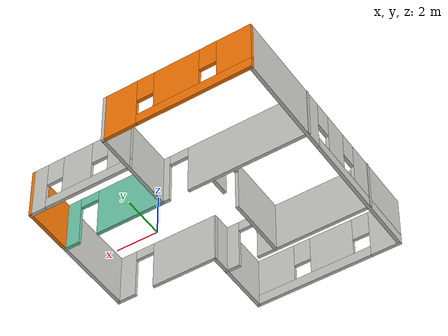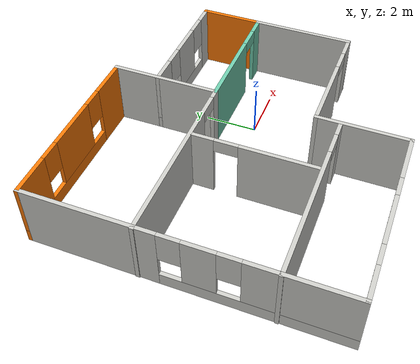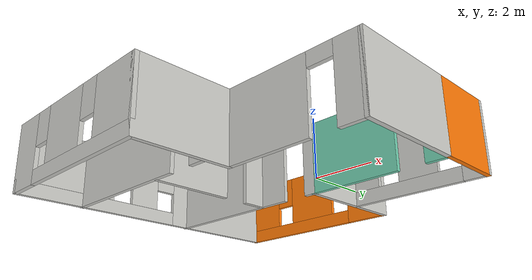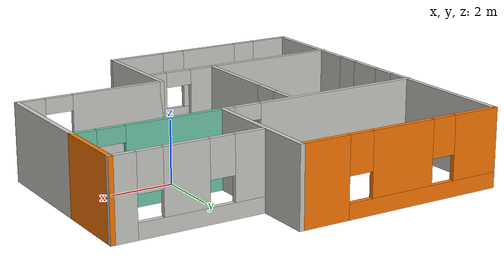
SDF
<?xml version='1.0'?>
<sdf version='1.6'>
  <model name='editor_models5'>
    <pose frame=''>-2.1153 -0.345 0 0 -0 0</pose>
    <link name='Wall_10'>
      <collision name='Wall_10_Collision'>
        <geometry>
          <box>
            <size>3.55 0.15 2.5</size>
          </box>
        </geometry>
        <pose frame=''>0 0 1.25 0 -0 0</pose>
      </collision>
      <visual name='Wall_10_Visual'>
        <pose frame=''>0 0 1.25 0 -0 0</pose>
        <geometry>
          <box>
            <size>3.55 0.15 2.5</size>
          </box>
        </geometry>
        <material>
          <script>
            <uri>file://media/materials/scripts/gazebo.material</uri>
            <name>Gazebo/CeilingTiled</name>
          </script>
          <ambient>0.996078 0.47451 0.0196078 1</ambient>
        </material>
      </visual>
      <pose frame=''>1.0153 -3.975 0 0 0 -1.5708</pose>
    </link>
    <link name='Wall_12'>
      <pose frame=''>-2.425 1.575 0 0 -0 3.14159</pose>
      <visual name='Wall_12_Visual_0'>
        <pose frame=''>-3.29324 0 1.25 0 -0 0</pose>
        <geometry>
          <box>
            <size>0.444103 0.15 2.5</size>
          </box>
        </geometry>
        <material>
          <script>
            <uri>file://media/materials/scripts/gazebo.material</uri>
            <name>Gazebo/CeilingTiled</name>
          </script>
          <ambient>0.435294 0.796078 0.67451 1</ambient>
        </material>
      </visual>
      <collision name='Wall_12_Collision_0'>
        <geometry>
          <box>
            <size>0.444103 0.15 2.5</size>
          </box>
        </geometry>
        <pose frame=''>-3.29324 0 1.25 0 -0 0</pose>
      </collision>
      <visual name='Wall_12_Visual_1'>
        <pose frame=''>0.672051 0 1.25 0 -0 0</pose>
        <geometry>
          <box>
            <size>5.68649 0.15 2.5</size>
          </box>
        </geometry>
        <material>
          <script>
            <uri>file://media/materials/scripts/gazebo.material</uri>
            <name>Gazebo/CeilingTiled</name>
          </script>
          <ambient>0.435294 0.796078 0.67451 1</ambient>
        </material>
      </visual>
      <collision name='Wall_12_Collision_1'>
        <geometry>
          <box>
            <size>5.68649 0.15 2.5</size>
          </box>
        </geometry>
        <pose frame=''>0.672051 0 1.25 0 -0 0</pose>
      </collision>
      <visual name='Wall_12_Visual_2'>
        <pose frame=''>-2.62119 0 2.25 0 -0 0</pose>
        <geometry>
          <box>
            <size>0.9 0.15 0.5</size>
          </box>
        </geometry>
        <material>
          <script>
            <uri>file://media/materials/scripts/gazebo.material</uri>
            <name>Gazebo/CeilingTiled</name>
          </script>
          <ambient>0.435294 0.796078 0.67451 1</ambient>
        </material>
      </visual>
      <collision name='Wall_12_Collision_2'>
        <geometry>
          <box>
            <size>0.9 0.15 0.5</size>
          </box>
        </geometry>
        <pose frame=''>-2.62119 0 2.25 0 -0 0</pose>
      </collision>
    </link>
    <link name='Wall_14'>
      <pose frame=''>-2.43865 -3.18518 0 0 -0 3.14159</pose>
      <visual name='Wall_14_Visual_0'>
        <pose frame=''>-3.14967 0 1.25 0 -0 0</pose>
        <geometry>
          <box>
            <size>0.700654 0.15 2.5</size>
          </box>
        </geometry>
        <material>
          <script>
            <uri>file://media/materials/scripts/gazebo.material</uri>
            <name>Gazebo/CeilingTiled</name>
          </script>
          <ambient>0.435294 0.796078 0.67451 1</ambient>
        </material>
      </visual>
      <collision name='Wall_14_Collision_0'>
        <geometry>
          <box>
            <size>0.700654 0.15 2.5</size>
          </box>
        </geometry>
        <pose frame=''>-3.14967 0 1.25 0 -0 0</pose>
      </collision>
      <visual name='Wall_14_Visual_1'>
        <pose frame=''>0.800327 0 1.25 0 -0 0</pose>
        <geometry>
          <box>
            <size>5.39935 0.15 2.5</size>
          </box>
        </geometry>
        <material>
          <script>
            <uri>file://media/materials/scripts/gazebo.material</uri>
            <name>Gazebo/CeilingTiled</name>
          </script>
          <ambient>0.435294 0.796078 0.67451 1</ambient>
        </material>
      </visual>
      <collision name='Wall_14_Collision_1'>
        <geometry>
          <box>
            <size>5.39935 0.15 2.5</size>
          </box>
        </geometry>
        <pose frame=''>0.800327 0 1.25 0 -0 0</pose>
      </collision>
      <visual name='Wall_14_Visual_2'>
        <pose frame=''>-2.34935 0 2.25 0 -0 0</pose>
        <geometry>
          <box>
            <size>0.9 0.15 0.5</size>
          </box>
        </geometry>
        <material>
          <script>
            <uri>file://media/materials/scripts/gazebo.material</uri>
            <name>Gazebo/CeilingTiled</name>
          </script>
          <ambient>0.435294 0.796078 0.67451 1</ambient>
        </material>
      </visual>
      <collision name='Wall_14_Collision_2'>
        <geometry>
          <box>
            <size>0.9 0.15 0.5</size>
          </box>
        </geometry>
        <pose frame=''>-2.34935 0 2.25 0 -0 0</pose>
      </collision>
    </link>
    <link name='Wall_16'>
      <pose frame=''>-1.40144 -0.790665 0 0 0 -1.5708</pose>
      <visual name='Wall_16_Visual_0'>
        <pose frame=''>-1.9201 0 1.25 0 -0 0</pose>
        <geometry>
          <box>
            <size>0.90979 0.15 2.5</size>
          </box>
        </geometry>
        <material>
          <script>
            <uri>file://media/materials/scripts/gazebo.material</uri>
            <name>Gazebo/CeilingTiled</name>
          </script>
          <ambient>0.435294 0.796078 0.67451 1</ambient>
        </material>
      </visual>
      <collision name='Wall_16_Collision_0'>
        <geometry>
          <box>
            <size>0.90979 0.15 2.5</size>
          </box>
        </geometry>
        <pose frame=''>-1.9201 0 1.25 0 -0 0</pose>
      </collision>
      <visual name='Wall_16_Visual_1'>
        <pose frame=''>0.904895 0 1.25 0 -0 0</pose>
        <geometry>
          <box>
            <size>2.94021 0.15 2.5</size>
          </box>
        </geometry>
        <material>
          <script>
            <uri>file://media/materials/scripts/gazebo.material</uri>
            <name>Gazebo/CeilingTiled</name>
          </script>
          <ambient>0.435294 0.796078 0.67451 1</ambient>
        </material>
      </visual>
      <collision name='Wall_16_Collision_1'>
        <geometry>
          <box>
            <size>2.94021 0.15 2.5</size>
          </box>
        </geometry>
        <pose frame=''>0.904895 0 1.25 0 -0 0</pose>
      </collision>
      <visual name='Wall_16_Visual_2'>
        <pose frame=''>-1.01521 0 2.25 0 -0 0</pose>
        <geometry>
          <box>
            <size>0.9 0.15 0.5</size>
          </box>
        </geometry>
        <material>
          <script>
            <uri>file://media/materials/scripts/gazebo.material</uri>
            <name>Gazebo/CeilingTiled</name>
          </script>
          <ambient>0.435294 0.796078 0.67451 1</ambient>
        </material>
      </visual>
      <collision name='Wall_16_Collision_2'>
        <geometry>
          <box>
            <size>0.9 0.15 0.5</size>
          </box>
        </geometry>
        <pose frame=''>-1.01521 0 2.25 0 -0 0</pose>
      </collision>
    </link>
    <link name='Wall_18'>
      <collision name='Wall_18_Collision'>
        <geometry>
          <box>
            <size>2.5 0.15 2.5</size>
          </box>
        </geometry>
        <pose frame=''>0 0 1.25 0 -0 0</pose>
      </collision>
      <visual name='Wall_18_Visual'>
        <pose frame=''>0 0 1.25 0 -0 0</pose>
        <geometry>
          <box>
            <size>2.5 0.15 2.5</size>
          </box>
        </geometry>
        <material>
          <script>
            <uri>file://media/materials/scripts/gazebo.material</uri>
            <name>Gazebo/Grey</name>
          </script>
          <ambient>0.996078 0.47451 0.0196078 1</ambient>
        </material>
      </visual>
      <pose frame=''>5.86529 2.75 0 0 -0 1.5708</pose>
    </link>
    <link name='Wall_19'>
      <pose frame=''>3.44029 3.925 0 0 -0 3.14159</pose>
      <visual name='Wall_19_Visual_0'>
        <pose frame=''>-2.08582 0 1.25 0 -0 0</pose>
        <geometry>
          <box>
            <size>0.828368 0.15 2.5</size>
          </box>
        </geometry>
        <material>
          <script>
            <uri>file://media/materials/scripts/gazebo.material</uri>
            <name>Gazebo/CeilingTiled</name>
          </script>
          <ambient>0.996078 0.47451 0.0196078 1</ambient>
        </material>
      </visual>
      <collision name='Wall_19_Collision_0'>
        <geometry>
          <box>
            <size>0.828368 0.15 2.5</size>
          </box>
        </geometry>
        <pose frame=''>-2.08582 0 1.25 0 -0 0</pose>
      </collision>
      <visual name='Wall_19_Visual_1'>
        <pose frame=''>0.414184 0 0.25 0 -0 0</pose>
        <geometry>
          <box>
            <size>4.17163 0.15 0.5</size>
          </box>
        </geometry>
        <material>
          <script>
            <uri>file://media/materials/scripts/gazebo.material</uri>
            <name>Gazebo/CeilingTiled</name>
          </script>
          <ambient>0.996078 0.47451 0.0196078 1</ambient>
        </material>
      </visual>
      <collision name='Wall_19_Collision_1'>
        <geometry>
          <box>
            <size>4.17163 0.15 0.5</size>
          </box>
        </geometry>
        <pose frame=''>0.414184 0 0.25 0 -0 0</pose>
      </collision>
      <visual name='Wall_19_Visual_2'>
        <pose frame=''>-0.149797 0 1.5 0 -0 0</pose>
        <geometry>
          <box>
            <size>1.44367 0.15 2</size>
          </box>
        </geometry>
        <material>
          <script>
            <uri>file://media/materials/scripts/gazebo.material</uri>
            <name>Gazebo/CeilingTiled</name>
          </script>
          <ambient>0.996078 0.47451 0.0196078 1</ambient>
        </material>
      </visual>
      <collision name='Wall_19_Collision_2'>
        <geometry>
          <box>
            <size>1.44367 0.15 2</size>
          </box>
        </geometry>
        <pose frame=''>-0.149797 0 1.5 0 -0 0</pose>
      </collision>
      <visual name='Wall_19_Visual_3'>
        <pose frame=''>1.93602 0 1.5 0 -0 0</pose>
        <geometry>
          <box>
            <size>1.12796 0.15 2</size>
          </box>
        </geometry>
        <material>
          <script>
            <uri>file://media/materials/scripts/gazebo.material</uri>
            <name>Gazebo/CeilingTiled</name>
          </script>
          <ambient>0.996078 0.47451 0.0196078 1</ambient>
        </material>
      </visual>
      <collision name='Wall_19_Collision_3'>
        <geometry>
          <box>
            <size>1.12796 0.15 2</size>
          </box>
        </geometry>
        <pose frame=''>1.93602 0 1.5 0 -0 0</pose>
      </collision>
      <visual name='Wall_19_Visual_4'>
        <pose frame=''>-1.27163 0 1.9 0 -0 0</pose>
        <geometry>
          <box>
            <size>0.8 0.15 1.2</size>
          </box>
        </geometry>
        <material>
          <script>
            <uri>file://media/materials/scripts/gazebo.material</uri>
            <name>Gazebo/CeilingTiled</name>
          </script>
          <ambient>0.996078 0.47451 0.0196078 1</ambient>
        </material>
      </visual>
      <collision name='Wall_19_Collision_4'>
        <geometry>
          <box>
            <size>0.8 0.15 1.2</size>
          </box>
        </geometry>
        <pose frame=''>-1.27163 0 1.9 0 -0 0</pose>
      </collision>
      <visual name='Wall_19_Visual_5'>
        <pose frame=''>0.972037 0 1.9 0 -0 0</pose>
        <geometry>
          <box>
            <size>0.8 0.15 1.2</size>
          </box>
        </geometry>
        <material>
          <script>
            <uri>file://media/materials/scripts/gazebo.material</uri>
            <name>Gazebo/CeilingTiled</name>
          </script>
          <ambient>0.996078 0.47451 0.0196078 1</ambient>
        </material>
      </visual>
      <collision name='Wall_19_Collision_5'>
        <geometry>
          <box>
            <size>0.8 0.15 1.2</size>
          </box>
        </geometry>
        <pose frame=''>0.972037 0 1.9 0 -0 0</pose>
      </collision>
    </link>
    <link name='Wall_2'>
      <pose frame=''>3.44029 -2.275 0 0 -0 0</pose>
      <visual name='Wall_2_Visual_0'>
        <pose frame=''>-0.920466 0 1.25 0 -0 0</pose>
        <geometry>
          <box>
            <size>3.15907 0.15 2.5</size>
          </box>
        </geometry>
        <material>
          <script>
            <uri>file://media/materials/scripts/gazebo.material</uri>
            <name>Gazebo/CeilingTiled</name>
          </script>
          <ambient>0.996078 0.47451 0.0196078 1</ambient>
        </material>
      </visual>
      <collision name='Wall_2_Collision_0'>
        <geometry>
          <box>
            <size>3.15907 0.15 2.5</size>
          </box>
        </geometry>
        <pose frame=''>-0.920466 0 1.25 0 -0 0</pose>
      </collision>
      <visual name='Wall_2_Visual_1'>
        <pose frame=''>2.02953 0 1.25 0 -0 0</pose>
        <geometry>
          <box>
            <size>0.940931 0.15 2.5</size>
          </box>
        </geometry>
        <material>
          <script>
            <uri>file://media/materials/scripts/gazebo.material</uri>
            <name>Gazebo/CeilingTiled</name>
          </script>
          <ambient>0.996078 0.47451 0.0196078 1</ambient>
        </material>
      </visual>
      <collision name='Wall_2_Collision_1'>
        <geometry>
          <box>
            <size>0.940931 0.15 2.5</size>
          </box>
        </geometry>
        <pose frame=''>2.02953 0 1.25 0 -0 0</pose>
      </collision>
      <visual name='Wall_2_Visual_2'>
        <pose frame=''>1.10907 0 2.25 0 -0 0</pose>
        <geometry>
          <box>
            <size>0.9 0.15 0.5</size>
          </box>
        </geometry>
        <material>
          <script>
            <uri>file://media/materials/scripts/gazebo.material</uri>
            <name>Gazebo/CeilingTiled</name>
          </script>
          <ambient>0.996078 0.47451 0.0196078 1</ambient>
        </material>
      </visual>
      <collision name='Wall_2_Collision_2'>
        <geometry>
          <box>
            <size>0.9 0.15 0.5</size>
          </box>
        </geometry>
        <pose frame=''>1.10907 0 2.25 0 -0 0</pose>
      </collision>
    </link>
    <link name='Wall_3'>
      <collision name='Wall_3_Collision'>
        <geometry>
          <box>
            <size>4 0.15 2.5</size>
          </box>
        </geometry>
        <pose frame=''>0 0 1.25 0 -0 0</pose>
      </collision>
      <visual name='Wall_3_Visual'>
        <pose frame=''>0 0 1.25 0 -0 0</pose>
        <geometry>
          <box>
            <size>4 0.15 2.5</size>
          </box>
        </geometry>
        <material>
          <script>
            <uri>file://media/materials/scripts/gazebo.material</uri>
            <name>Gazebo/CeilingTiled</name>
          </script>
          <ambient>0.996078 0.47451 0.0196078 1</ambient>
        </material>
      </visual>
      <pose frame=''>5.86529 -0.35 0 0 -0 1.5708</pose>
    </link>
    <link name='Wall_4'>
      <pose frame=''>3.44029 1.575 0 0 -0 3.14159</pose>
      <visual name='Wall_4_Visual_0'>
        <pose frame=''>-2.09925 0 1.25 0 -0 0</pose>
        <geometry>
          <box>
            <size>0.801499 0.15 2.5</size>
          </box>
        </geometry>
        <material>
          <script>
            <uri>file://media/materials/scripts/gazebo.material</uri>
            <name>Gazebo/Grey</name>
          </script>
          <ambient>0.435294 0.796078 0.67451 1</ambient>
        </material>
      </visual>
      <collision name='Wall_4_Collision_0'>
        <geometry>
          <box>
            <size>0.801499 0.15 2.5</size>
          </box>
        </geometry>
        <pose frame=''>-2.09925 0 1.25 0 -0 0</pose>
      </collision>
      <visual name='Wall_4_Visual_1'>
        <pose frame=''>0.850749 0 1.25 0 -0 0</pose>
        <geometry>
          <box>
            <size>3.2985 0.15 2.5</size>
          </box>
        </geometry>
        <material>
          <script>
            <uri>file://media/materials/scripts/gazebo.material</uri>
            <name>Gazebo/Grey</name>
          </script>
          <ambient>0.435294 0.796078 0.67451 1</ambient>
        </material>
      </visual>
      <collision name='Wall_4_Collision_1'>
        <geometry>
          <box>
            <size>3.2985 0.15 2.5</size>
          </box>
        </geometry>
        <pose frame=''>0.850749 0 1.25 0 -0 0</pose>
      </collision>
      <visual name='Wall_4_Visual_2'>
        <pose frame=''>-1.2485 0 2.25 0 -0 0</pose>
        <geometry>
          <box>
            <size>0.9 0.15 0.5</size>
          </box>
        </geometry>
        <material>
          <script>
            <uri>file://media/materials/scripts/gazebo.material</uri>
            <name>Gazebo/Grey</name>
          </script>
          <ambient>0.435294 0.796078 0.67451 1</ambient>
        </material>
      </visual>
      <collision name='Wall_4_Collision_2'>
        <geometry>
          <box>
            <size>0.9 0.15 0.5</size>
          </box>
        </geometry>
        <pose frame=''>-1.2485 0 2.25 0 -0 0</pose>
      </collision>
    </link>
    <link name='Wall_5'>
      <collision name='Wall_5_Collision'>
        <geometry>
          <box>
            <size>4.25 0.15 2.5</size>
          </box>
        </geometry>
        <pose frame=''>0 0 1.25 0 -0 0</pose>
      </collision>
      <visual name='Wall_5_Visual'>
        <pose frame=''>0 0 1.25 0 -0 0</pose>
        <geometry>
          <box>
            <size>4.25 0.15 2.5</size>
          </box>
        </geometry>
        <material>
          <script>
            <uri>file://media/materials/scripts/gazebo.material</uri>
            <name>Gazebo/CeilingTiled</name>
          </script>
          <ambient>0.996078 0.47451 0.0196078 1</ambient>
        </material>
      </visual>
      <pose frame=''>1.0153 3.625 0 0 -0 1.5708</pose>
    </link>
    <link name='Wall_6'>
      <pose frame=''>-2.40971 5.675 0 0 -0 3.14159</pose>
      <visual name='Wall_6_Visual_0'>
        <pose frame=''>-2.66826 0 1.25 0 -0 0</pose>
        <geometry>
          <box>
            <size>1.66347 0.15 2.5</size>
          </box>
        </geometry>
        <material>
          <script>
            <uri>file://media/materials/scripts/gazebo.material</uri>
            <name>Gazebo/Grey</name>
          </script>
          <ambient>0.996078 0.47451 0.0196078 1</ambient>
        </material>
      </visual>
      <collision name='Wall_6_Collision_0'>
        <geometry>
          <box>
            <size>1.66347 0.15 2.5</size>
          </box>
        </geometry>
        <pose frame=''>-2.66826 0 1.25 0 -0 0</pose>
      </collision>
      <visual name='Wall_6_Visual_1'>
        <pose frame=''>0.831737 0 0.25 0 -0 0</pose>
        <geometry>
          <box>
            <size>5.33653 0.15 0.5</size>
          </box>
        </geometry>
        <material>
          <script>
            <uri>file://media/materials/scripts/gazebo.material</uri>
            <name>Gazebo/Grey</name>
          </script>
          <ambient>0.996078 0.47451 0.0196078 1</ambient>
        </material>
      </visual>
      <collision name='Wall_6_Collision_1'>
        <geometry>
          <box>
            <size>5.33653 0.15 0.5</size>
          </box>
        </geometry>
        <pose frame=''>0.831737 0 0.25 0 -0 0</pose>
      </collision>
      <visual name='Wall_6_Visual_2'>
        <pose frame=''>0.031805 0 1.5 0 -0 0</pose>
        <geometry>
          <box>
            <size>2.13666 0.15 2</size>
          </box>
        </geometry>
        <material>
          <script>
            <uri>file://media/materials/scripts/gazebo.material</uri>
            <name>Gazebo/Grey</name>
          </script>
          <ambient>0.996078 0.47451 0.0196078 1</ambient>
        </material>
      </visual>
      <collision name='Wall_6_Collision_2'>
        <geometry>
          <box>
            <size>2.13666 0.15 2</size>
          </box>
        </geometry>
        <pose frame=''>0.031805 0 1.5 0 -0 0</pose>
      </collision>
      <visual name='Wall_6_Visual_3'>
        <pose frame=''>2.70007 0 1.5 0 -0 0</pose>
        <geometry>
          <box>
            <size>1.59986 0.15 2</size>
          </box>
        </geometry>
        <material>
          <script>
            <uri>file://media/materials/scripts/gazebo.material</uri>
            <name>Gazebo/Grey</name>
          </script>
          <ambient>0.996078 0.47451 0.0196078 1</ambient>
        </material>
      </visual>
      <collision name='Wall_6_Collision_3'>
        <geometry>
          <box>
            <size>1.59986 0.15 2</size>
          </box>
        </geometry>
        <pose frame=''>2.70007 0 1.5 0 -0 0</pose>
      </collision>
      <visual name='Wall_6_Visual_4'>
        <pose frame=''>-1.43653 0 1.9 0 -0 0</pose>
        <geometry>
          <box>
            <size>0.8 0.15 1.2</size>
          </box>
        </geometry>
        <material>
          <script>
            <uri>file://media/materials/scripts/gazebo.material</uri>
            <name>Gazebo/Grey</name>
          </script>
          <ambient>0.996078 0.47451 0.0196078 1</ambient>
        </material>
      </visual>
      <collision name='Wall_6_Collision_4'>
        <geometry>
          <box>
            <size>0.8 0.15 1.2</size>
          </box>
        </geometry>
        <pose frame=''>-1.43653 0 1.9 0 -0 0</pose>
      </collision>
      <visual name='Wall_6_Visual_5'>
        <pose frame=''>1.50014 0 1.9 0 -0 0</pose>
        <geometry>
          <box>
            <size>0.8 0.15 1.2</size>
          </box>
        </geometry>
        <material>
          <script>
            <uri>file://media/materials/scripts/gazebo.material</uri>
            <name>Gazebo/Grey</name>
          </script>
          <ambient>0.996078 0.47451 0.0196078 1</ambient>
        </material>
      </visual>
      <collision name='Wall_6_Collision_5'>
        <geometry>
          <box>
            <size>0.8 0.15 1.2</size>
          </box>
        </geometry>
        <pose frame=''>1.50014 0 1.9 0 -0 0</pose>
      </collision>
    </link>
    <link name='Wall_7'>
      <pose frame=''>-5.8347 0 0 0 0 -1.5708</pose>
      <visual name='Wall_7_Visual_0'>
        <pose frame=''>-3.27222 0 1.25 0 -0 0</pose>
        <geometry>
          <box>
            <size>4.95556 0.15 2.5</size>
          </box>
        </geometry>
        <material>
          <script>
            <uri>file://media/materials/scripts/gazebo.material</uri>
            <name>Gazebo/CeilingTiled</name>
          </script>
          <ambient>0.996078 0.47451 0.0196078 1</ambient>
        </material>
      </visual>
      <collision name='Wall_7_Collision_0'>
        <geometry>
          <box>
            <size>4.95556 0.15 2.5</size>
          </box>
        </geometry>
        <pose frame=''>-3.27222 0 1.25 0 -0 0</pose>
      </collision>
      <visual name='Wall_7_Visual_1'>
        <pose frame=''>2.47778 0 0.25 0 -0 0</pose>
        <geometry>
          <box>
            <size>6.54444 0.15 0.5</size>
          </box>
        </geometry>
        <material>
          <script>
            <uri>file://media/materials/scripts/gazebo.material</uri>
            <name>Gazebo/CeilingTiled</name>
          </script>
          <ambient>0.996078 0.47451 0.0196078 1</ambient>
        </material>
      </visual>
      <collision name='Wall_7_Collision_1'>
        <geometry>
          <box>
            <size>6.54444 0.15 0.5</size>
          </box>
        </geometry>
        <pose frame=''>2.47778 0 0.25 0 -0 0</pose>
      </collision>
      <visual name='Wall_7_Visual_2'>
        <pose frame=''>0.591124 0 1.5 0 -0 0</pose>
        <geometry>
          <box>
            <size>1.17113 0.15 2</size>
          </box>
        </geometry>
        <material>
          <script>
            <uri>file://media/materials/scripts/gazebo.material</uri>
            <name>Gazebo/CeilingTiled</name>
          </script>
          <ambient>0.996078 0.47451 0.0196078 1</ambient>
        </material>
      </visual>
      <collision name='Wall_7_Collision_2'>
        <geometry>
          <box>
            <size>1.17113 0.15 2</size>
          </box>
        </geometry>
        <pose frame=''>0.591124 0 1.5 0 -0 0</pose>
      </collision>
      <visual name='Wall_7_Visual_3'>
        <pose frame=''>3.86334 0 1.5 0 -0 0</pose>
        <geometry>
          <box>
            <size>3.77331 0.15 2</size>
          </box>
        </geometry>
        <material>
          <script>
            <uri>file://media/materials/scripts/gazebo.material</uri>
            <name>Gazebo/CeilingTiled</name>
          </script>
          <ambient>0.996078 0.47451 0.0196078 1</ambient>
        </material>
      </visual>
      <collision name='Wall_7_Collision_3'>
        <geometry>
          <box>
            <size>3.77331 0.15 2</size>
          </box>
        </geometry>
        <pose frame=''>3.86334 0 1.5 0 -0 0</pose>
      </collision>
      <visual name='Wall_7_Visual_4'>
        <pose frame=''>-0.394441 0 1.9 0 -0 0</pose>
        <geometry>
          <box>
            <size>0.8 0.15 1.2</size>
          </box>
        </geometry>
        <material>
          <script>
            <uri>file://media/materials/scripts/gazebo.material</uri>
            <name>Gazebo/CeilingTiled</name>
          </script>
          <ambient>0.996078 0.47451 0.0196078 1</ambient>
        </material>
      </visual>
      <collision name='Wall_7_Collision_4'>
        <geometry>
          <box>
            <size>0.8 0.15 1.2</size>
          </box>
        </geometry>
        <pose frame=''>-0.394441 0 1.9 0 -0 0</pose>
      </collision>
      <visual name='Wall_7_Visual_5'>
        <pose frame=''>1.57669 0 1.9 0 -0 0</pose>
        <geometry>
          <box>
            <size>0.8 0.15 1.2</size>
          </box>
        </geometry>
        <material>
          <script>
            <uri>file://media/materials/scripts/gazebo.material</uri>
            <name>Gazebo/CeilingTiled</name>
          </script>
          <ambient>0.996078 0.47451 0.0196078 1</ambient>
        </material>
      </visual>
      <collision name='Wall_7_Collision_5'>
        <geometry>
          <box>
            <size>0.8 0.15 1.2</size>
          </box>
        </geometry>
        <pose frame=''>1.57669 0 1.9 0 -0 0</pose>
      </collision>
    </link>
    <link name='Wall_8'>
      <pose frame=''>-2.40971 -5.675 0 0 -0 0</pose>
      <visual name='Wall_8_Visual_0'>
        <pose frame=''>-2.80713 0 1.25 0 -0 0</pose>
        <geometry>
          <box>
            <size>1.38573 0.15 2.5</size>
          </box>
        </geometry>
        <material>
          <script>
            <uri>file://media/materials/scripts/gazebo.material</uri>
            <name>Gazebo/CeilingTiled</name>
          </script>
          <ambient>0.996078 0.47451 0.0196078 1</ambient>
        </material>
      </visual>
      <collision name='Wall_8_Collision_0'>
        <geometry>
          <box>
            <size>1.38573 0.15 2.5</size>
          </box>
        </geometry>
        <pose frame=''>-2.80713 0 1.25 0 -0 0</pose>
      </collision>
      <visual name='Wall_8_Visual_1'>
        <pose frame=''>0.692866 0 0.25 0 -0 0</pose>
        <geometry>
          <box>
            <size>5.61427 0.15 0.5</size>
          </box>
        </geometry>
        <material>
          <script>
            <uri>file://media/materials/scripts/gazebo.material</uri>
            <name>Gazebo/CeilingTiled</name>
          </script>
          <ambient>0.996078 0.47451 0.0196078 1</ambient>
        </material>
      </visual>
      <collision name='Wall_8_Collision_1'>
        <geometry>
          <box>
            <size>5.61427 0.15 0.5</size>
          </box>
        </geometry>
        <pose frame=''>0.692866 0 0.25 0 -0 0</pose>
      </collision>
      <visual name='Wall_8_Visual_2'>
        <pose frame=''>-0.276527 0 1.5 0 -0 0</pose>
        <geometry>
          <box>
            <size>2.07548 0.15 2</size>
          </box>
        </geometry>
        <material>
          <script>
            <uri>file://media/materials/scripts/gazebo.material</uri>
            <name>Gazebo/CeilingTiled</name>
          </script>
          <ambient>0.996078 0.47451 0.0196078 1</ambient>
        </material>
      </visual>
      <collision name='Wall_8_Collision_2'>
        <geometry>
          <box>
            <size>2.07548 0.15 2</size>
          </box>
        </geometry>
        <pose frame=''>-0.276527 0 1.5 0 -0 0</pose>
      </collision>
      <visual name='Wall_8_Visual_3'>
        <pose frame=''>2.53061 0 1.5 0 -0 0</pose>
        <geometry>
          <box>
            <size>1.93879 0.15 2</size>
          </box>
        </geometry>
        <material>
          <script>
            <uri>file://media/materials/scripts/gazebo.material</uri>
            <name>Gazebo/CeilingTiled</name>
          </script>
          <ambient>0.996078 0.47451 0.0196078 1</ambient>
        </material>
      </visual>
      <collision name='Wall_8_Collision_3'>
        <geometry>
          <box>
            <size>1.93879 0.15 2</size>
          </box>
        </geometry>
        <pose frame=''>2.53061 0 1.5 0 -0 0</pose>
      </collision>
      <visual name='Wall_8_Visual_4'>
        <pose frame=''>-1.71427 0 1.9 0 -0 0</pose>
        <geometry>
          <box>
            <size>0.8 0.15 1.2</size>
          </box>
        </geometry>
        <material>
          <script>
            <uri>file://media/materials/scripts/gazebo.material</uri>
            <name>Gazebo/CeilingTiled</name>
          </script>
          <ambient>0.996078 0.47451 0.0196078 1</ambient>
        </material>
      </visual>
      <collision name='Wall_8_Collision_4'>
        <geometry>
          <box>
            <size>0.8 0.15 1.2</size>
          </box>
        </geometry>
        <pose frame=''>-1.71427 0 1.9 0 -0 0</pose>
      </collision>
      <visual name='Wall_8_Visual_5'>
        <pose frame=''>1.16121 0 1.9 0 -0 0</pose>
        <geometry>
          <box>
            <size>0.8 0.15 1.2</size>
          </box>
        </geometry>
        <material>
          <script>
            <uri>file://media/materials/scripts/gazebo.material</uri>
            <name>Gazebo/CeilingTiled</name>
          </script>
          <ambient>0.996078 0.47451 0.0196078 1</ambient>
        </material>
      </visual>
      <collision name='Wall_8_Collision_5'>
        <geometry>
          <box>
            <size>0.8 0.15 1.2</size>
          </box>
        </geometry>
        <pose frame=''>1.16121 0 1.9 0 -0 0</pose>
      </collision>
    </link>
    <static>1</static>
  </model>
</sdf>
